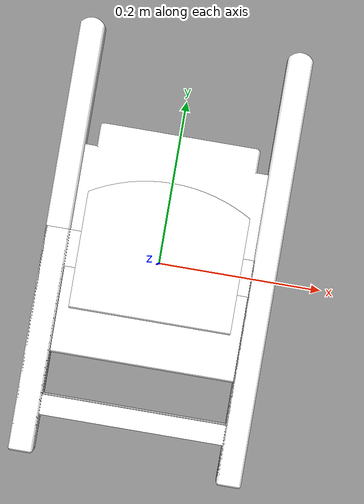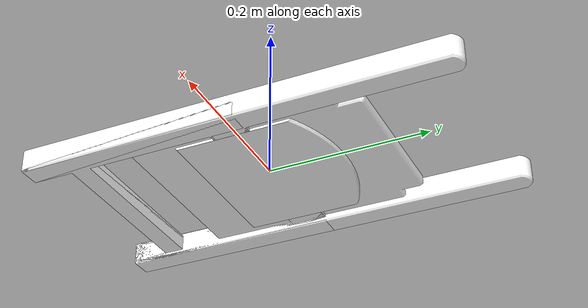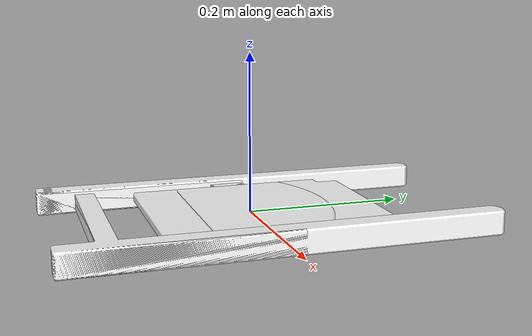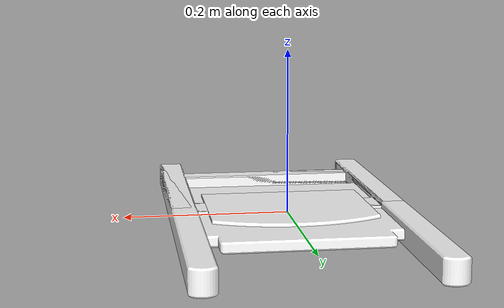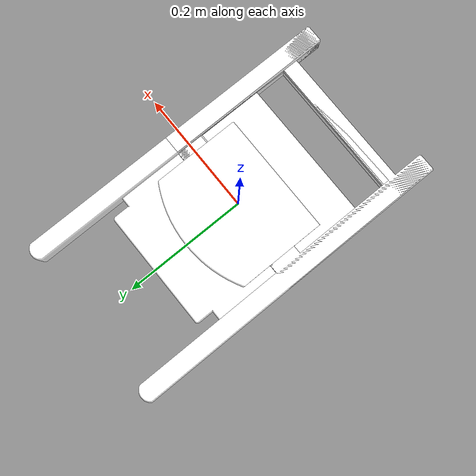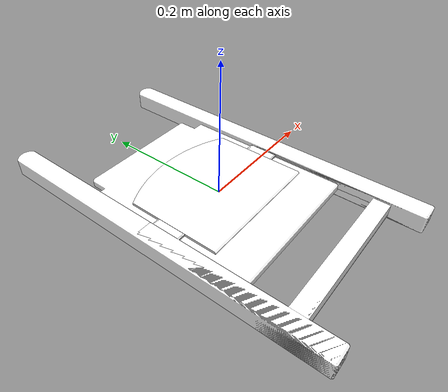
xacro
<?xml version="1.0"?>
<robot  name="ikea_chair"  xmlns:xacro="http://www.ros.org/wiki/xacro">

	<link name="world"/>

	<!-- backrest -->
	<xacro:include filename="$(find furniture_description)/urdf/ikea_chair_backrest.xacro" />
	<xacro:backrest link_name = "backrest_ooi" color="White" />

	<xacro:include filename="$(find furniture_description)/urdf/ikea_chair_side_part.xacro" />
	<!-- left part -->
	<xacro:side_part link_name = "left_ooi" reflect="1" color="White"/>
	<!-- right part -->
	<xacro:side_part link_name = "right_ooi" reflect ="-1" color="White"/>

	<xacro:include filename="$(find furniture_description)/urdf/ikea_chair_front_part.xacro" />
	<!-- left part -->
	<xacro:front_part link_name = "frontbeam_ooi" reflect="1" color="White"/>
	<!-- right part -->
	<xacro:front_part link_name = "backbeam_ooi" reflect ="-1" color="White"/>

	<!-- cushion -->
	<xacro:include filename="$(find furniture_description)/urdf/ikea_chair_cushion.xacro" />
	<xacro:cushion link_name = "cushion_ooi" color="White"/>
</robot>

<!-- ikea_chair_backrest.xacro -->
<robot name="ikea_chair_backrest" xmlns:xacro="http://www.ros.org/wiki/xacro">

<!-- Import Rviz colors -->
<xacro:include filename="$(find furniture_description)/urdf/materials.xacro" />

<xacro:macro name="backrest" params="link_name color">
	<link name="${link_name}">
	  <visual>
		<origin xyz="0 0 0" rpy="${pi/2} 0 0" />
		<geometry>
		    <mesh filename="package://furniture_description/meshes/backrest.STL"/>
		</geometry>
		<material name="${color}"/>
	  </visual>
	  <collision>
		<origin xyz="0 0 0" rpy="${pi/2} 0 0" />
		<geometry>
		     <mesh filename="package://furniture_description/meshes/backrest.STL"/>
		</geometry>
	  </collision>
	</link>

	<joint name="${link_name}_joint" type="floating">
		<parent link="world" />
		<child link = "${link_name}" />
	</joint>

	<link name="${link_name}_hole_1_1"/>
	<link name="${link_name}_hole_1_2"/>

	<joint name="${link_name}_hole_1_1_joint" type="fixed">
		<parent link="${link_name}" />
		<child link = "${link_name}_hole_1_1" />
		<origin xyz="-0.1 0.0 0.0" rpy="0 ${-pi/2} 0" />
	</joint>

	<joint name="${link_name}_hole_1_2_joint" type="fixed">
		<parent link="${link_name}" />
		<child link = "${link_name}_hole_1_2" />
		<origin xyz="-0.1 -0.032 0.0" rpy="0 ${-pi/2} 0" />
	</joint>

	<link name="${link_name}_hole_2_1"/>
	<link name="${link_name}_hole_2_2"/>

	<joint name="${link_name}_hole_2_1_joint" type="fixed">
		<parent link="${link_name}" />
		<child link = "${link_name}_hole_2_1" />
		<origin xyz="0.1 -0.0 0.0" rpy="0 ${pi/2} 0" />
	</joint>

	<joint name="${link_name}_hole_2_2_joint" type="fixed">
		<parent link="${link_name}" />
		<child link = "${link_name}_hole_2_2" />
		<origin xyz="0.1 -0.032 0.0" rpy="0 ${pi/2} 0" />
	</joint>

</xacro:macro>

</robot>

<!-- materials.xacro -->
<robot>

  <material name="Black">
    <color rgba="0.0 0.0 0.0 1.0"/>
  </material>

  <material name="Blue">
    <color rgba="0.0 0.0 1.0 1.0"/>
  </material>

  <material name="Green">
    <color rgba="0.0 1.0 0.0 1.0"/>
  </material>

  <material name="Grey">
    <color rgba="0.4 0.4 0.4 1.0"/>
  </material>

  <material name="Orange">
    <color rgba="${255/255} ${108/255} ${10/255} 1.0"/>
  </material>

  <material name="Brown">
    <color rgba="${222/255} ${207/255} ${195/255} 1.0"/>
  </material>

  <material name="Red">
    <color rgba="1.0 0.0 0.0 1.0"/>
  </material>

  <material name="Yellow">
    <color rgba="1.0 1.0 0.0 1.0"/>
  </material>

  <material name="Pink">
    <color rgba="1.0 0.0 1.0 1.0"/>
  </material>

  <material name="White">
    <color rgba="1.0 1.0 1.0 1.0"/>
  </material>

</robot>

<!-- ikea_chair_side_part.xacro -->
<robot name="Ikea_chair_side_file" xmlns:xacro="http://ros.org/wiki/xacro">

<xacro:macro name="side_part" params="link_name reflect color">
	<link name="${link_name}">
	  <visual>
		<origin xyz="0 0 0" rpy="${reflect * -pi/2} 0 ${pi/2}" />
		<geometry>
		    <mesh filename="package://furniture_description/meshes/legs.STL"/>
		</geometry>
		<material name="${color}"/>
	  </visual>

		<collision>
		<origin xyz="0 0 0" rpy="${pi/2} 0 ${pi/2}" />
			<geometry>
		    	<mesh filename="package://furniture_description/meshes/legs.STL"/>
			</geometry>
		</collision>

		<inertial>
			<mass value="1" />
			<origin xyz="0 0 0" rpy="0 0 0"/>
			<inertia ixx="1e-6" ixy="0" ixz="0" iyy="1e-6" iyz="0" izz="1e-6" />
		</inertial>
	</link>

	<joint name="${link_name}_joint" type="floating">
		<parent link="world" />
		<child link = "${link_name}" />
	</joint>

	<link name="${link_name}_hole_1_1"/>
	<link name="${link_name}_hole_1_2"/>

	<joint name="${link_name}_hole_1_1_joint" type="fixed">
		<parent link="${link_name}" />
		<child link = "${link_name}_hole_1_1" />
		<origin xyz="${reflect * -0.13} 0.012 0.015" rpy="0 0 0" />
	</joint>

	<joint name="${link_name}_hole_1_2_joint" type="fixed">
		<parent link="${link_name}" />
		<child link = "${link_name}_hole_1_2" />
		<origin xyz="${reflect * -0.13} -0.012 0.015" rpy="0 0 0" />
	</joint>

	<link name="${link_name}_hole_2_1"/>
	<link name="${link_name}_hole_2_2"/>

	<joint name="${link_name}_hole_2_1_joint" type="fixed">
		<parent link="${link_name}" />
		<child link = "${link_name}_hole_2_1" />
		<origin xyz="${reflect * 0.13} 0.012 0.015" rpy="0 0 0" />
	</joint>

	<joint name="${link_name}_hole_2_2_joint" type="fixed">
		<parent link="${link_name}" />
		<child link = "${link_name}_hole_2_2" />
		<origin xyz="${reflect * 0.13} -0.012 0.015" rpy="0 0 0" />
	</joint>

	<link name="${link_name}_hole_3_1"/>
	<link name="${link_name}_hole_3_2"/>

	<joint name="${link_name}_hole_3_1_joint" type="fixed">
		<parent link="${link_name}" />
		<child link = "${link_name}_hole_3_1" />
		<origin xyz="${reflect *0.13} 0.193 0.015" rpy="0 0 0" />
	</joint>

	<joint name="${link_name}_hole_3_2_joint" type="fixed">
		<parent link="${link_name}" />
		<child link = "${link_name}_hole_3_2" />
		<origin xyz="${reflect *0.13} 0.161 0.015" rpy="0 0 0" />
	</joint>

	<gazebo reference="${link_name}">
		<material>Gazebo/${color}</material>
		<mu1>0.2</mu1>
		<mu2>0.2</mu2>
	</gazebo>
</xacro:macro>

</robot>

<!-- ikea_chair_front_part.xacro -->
<robot name="Ikea_chair_front_part" xmlns:xacro="http://ros.org/wiki/xacro">

<xacro:macro name="front_part" params="link_name reflect color">
	<link name="${link_name}">
	  <visual>
		<origin xyz="0 0 0" rpy="${pi/2} 0 0" />
		<geometry>
		    <mesh filename="package://furniture_description/meshes/frontbeam.STL"/>
		</geometry>
		<material name="${color}"/>
	  </visual>

	  <collision>
		<origin xyz="0 0 0" rpy="${pi/2} 0 0" />
		<geometry>
		    <mesh filename="package://furniture_description/meshes/frontbeam.STL"/>
		</geometry>
	  </collision>
	</link>

	<joint name="${link_name}_joint" type="floating">
		<parent link="world" />
		<child link = "${link_name}" />
	</joint>

	<link name="${link_name}_hole_1_1"/>
	<link name="${link_name}_hole_1_2"/>

	<joint name="${link_name}_hole_1_1_joint" type="fixed">
		<parent link="${link_name}" />
		<child link = "${link_name}_hole_1_1" />
		<origin xyz="-0.1 0.012 0.0" rpy="0 ${-pi/2} 0" />
	</joint>

	<joint name="${link_name}_hole_1_2_joint" type="fixed">
		<parent link="${link_name}" />
		<child link = "${link_name}_hole_1_2" />
		<origin xyz="-0.1 -0.012 0.0" rpy="0 ${-pi/2} 0" />
	</joint>

	<link name="${link_name}_hole_2_1"/>
	<link name="${link_name}_hole_2_2"/>

	<joint name="${link_name}_hole_2_1_joint" type="fixed">
		<parent link="${link_name}" />
		<child link = "${link_name}_hole_2_1" />
		<origin xyz="0.1 0.012 0.0" rpy="0 ${pi/2} 0" />
	</joint>

	<joint name="${link_name}_hole_2_2_joint" type="fixed">
		<parent link="${link_name}" />
		<child link = "${link_name}_hole_2_2" />
		<origin xyz="0.1 -0.012 0.0" rpy="0 ${pi/2} 0" />
	</joint>

	<link name="${link_name}_hole_3_1"/>
	<link name="${link_name}_hole_3_2"/>

	<joint name="${link_name}_hole_3_1_joint" type="fixed">
		<parent link="${link_name}" />
		<child link = "${link_name}_hole_3_1" />
		<origin xyz="-0.048 -0.0225 0.0" rpy="${pi/2} 0  0" />
	</joint>

	<joint name="${link_name}_hole_3_2_joint" type="fixed">
		<parent link="${link_name}" />
		<child link = "${link_name}_hole_3_2" />
		<origin xyz="0.048 -0.0225 0.0" rpy="${pi/2} 0 0" />
	</joint>

</xacro:macro>

</robot>

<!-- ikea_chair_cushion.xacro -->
<robot name="ikea_chair_cushion" xmlns:xacro="http://www.ros.org/wiki/xacro">

<xacro:macro name="cushion" params="link_name color">
	<link name="${link_name}">
	  <visual>
		<origin xyz="0 0 0" rpy="${pi/2} 0 0" />
		<geometry>
		    <mesh filename="package://furniture_description/meshes/cushion.STL"/>
		</geometry>
		<material name="${color}"/>
	  </visual>
	  <collision>
		<origin xyz="0 0 0" rpy="${pi/2} 0 0" />
		<geometry>
		    <mesh filename="package://furniture_description/meshes/cushion.STL"/>
		</geometry>
	  </collision>
	</link>

	<joint name="cushion_joint" type="floating">
		<parent link="world" />
		<child link = "${link_name}" />
	</joint>

	<link name="${link_name}_hole_1_1"/>
	<link name="${link_name}_hole_1_2"/>

	<joint name="${link_name}_hole_1_1_joint" type="fixed">
		<parent link="${link_name}" />
		<child link = "${link_name}_hole_1_1" />
		<origin xyz="-0.048 -0.11 -0.007" rpy="0 ${pi} 0" />
	</joint>

	<joint name="${link_name}_hole_1_2_joint" type="fixed">
		<parent link="${link_name}" />
		<child link = "${link_name}_hole_1_2" />
		<origin xyz="0.048 -0.11 -0.007" rpy="0 ${pi} 0" />
	</joint>

	<link name="${link_name}_hole_2_1"/>
	<link name="${link_name}_hole_2_2"/>

	<joint name="${link_name}_hole_2_1_joint" type="fixed">
		<parent link="${link_name}" />
		<child link = "${link_name}_hole_2_1" />
		<origin xyz="-0.048 0.15 -0.007" rpy="0 ${pi} 0" />
	</joint>

	<joint name="${link_name}_hole_2_2_joint" type="fixed">
		<parent link="${link_name}" />
		<child link = "${link_name}_hole_2_2" />
		<origin xyz="0.048 0.15 -0.007" rpy="0 ${pi} 0" />
	</joint>

</xacro:macro>

</robot>
